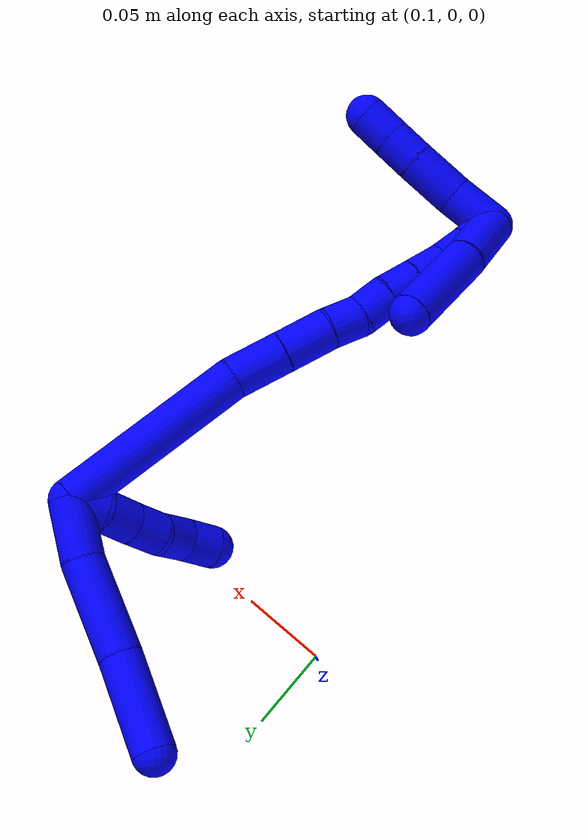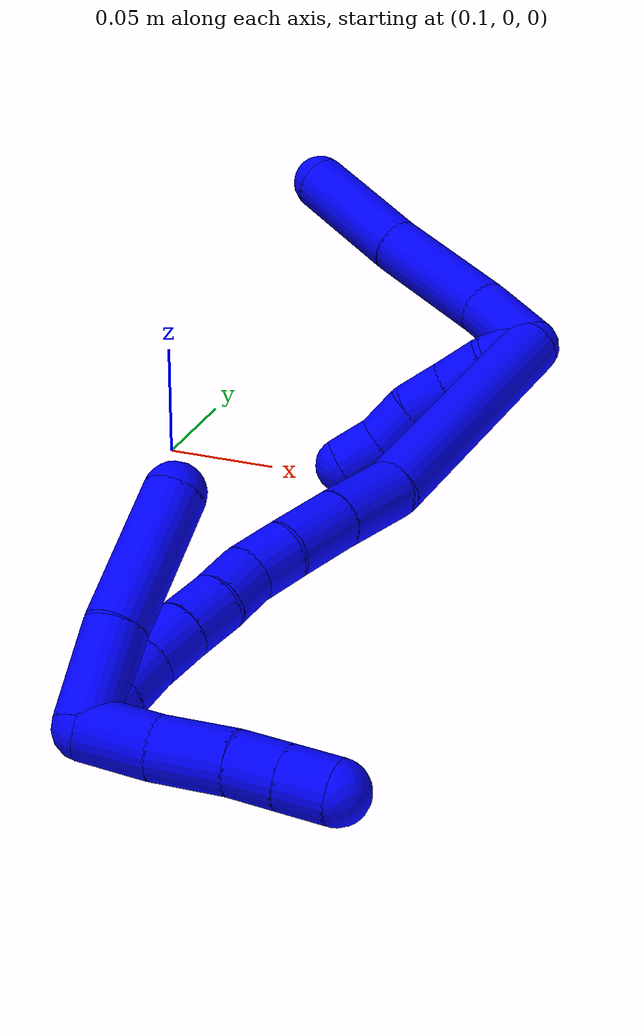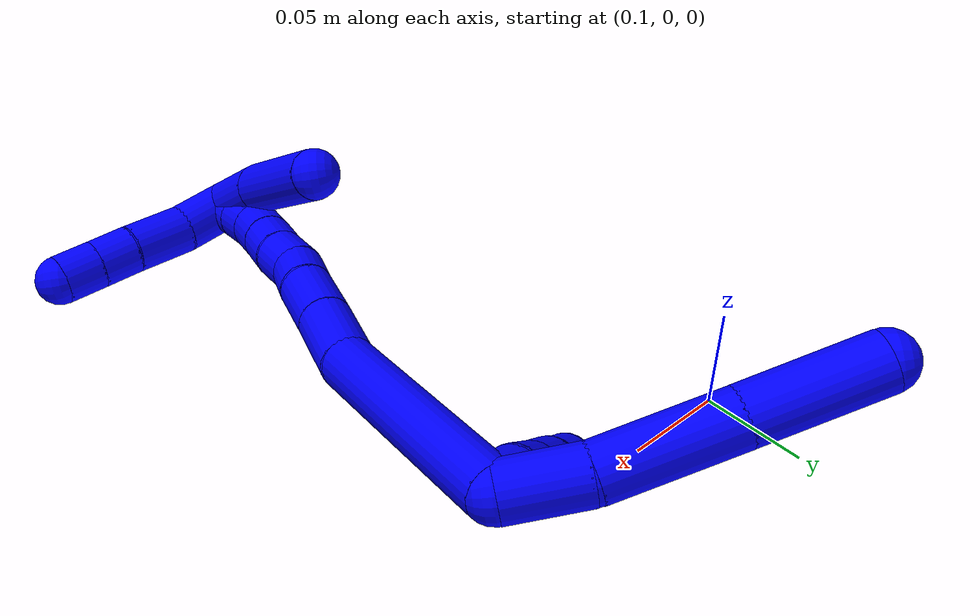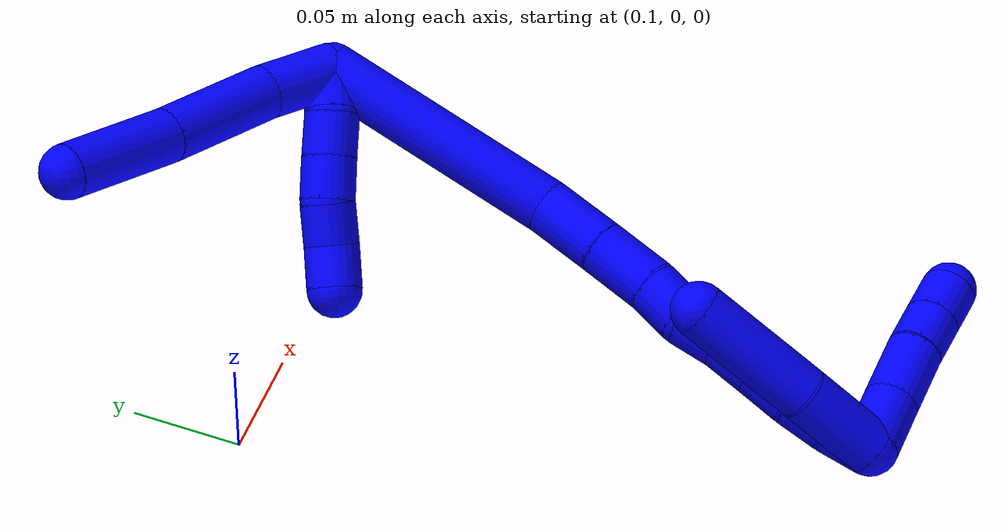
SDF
<sdf version="1.7">
 <world name="default">
  <model name="1">
   <static>0</static>
   <link name="1">
    <collision name="collision-cylinder-e_1_2_8">
     <pose>0.000787 -0.001847 -0.017692 3.03757 0.044239 0.803703</pose>
     <geometry><cylinder><radius>0.0125</radius><length>0.035611</length></cylinder></geometry>
     <surface>
      <friction><ode><mu>1.16</mu><mu2>1.16</mu2><slip1>0</slip1><slip2>0</slip2></ode></friction>
      <contact><ode><kp>1e+06</kp><kd>1</kd><max_vel>0</max_vel><min_depth>0.001</min_depth></ode></contact>
     </surface>
    </collision>
    <visual name="visual-cylinder-e_1_2_8">
     <pose>0.000787 -0.001847 -0.017692 3.03757 0.044239 0.803703</pose>
     <geometry><cylinder><radius>0.0125</radius><length>0.035611</length></cylinder></geometry>
     <material><ambient>0 0 1 1</ambient></material>
    </visual>
    <collision name="collision-cylinder-e_2_8_9">
     <pose>0.001974 -0.011792 -0.063306 2.85933 0.013743 0.096654</pose>
     <geometry><cylinder><radius>0.0125</radius><length>0.05815</length></cylinder></geometry>
     <surface>
      <friction><ode><mu>1.16</mu><mu2>1.16</mu2><slip1>0</slip1><slip2>0</slip2></ode></friction>
      <contact><ode><kp>1e+06</kp><kd>1</kd><max_vel>0</max_vel><min_depth>0.001</min_depth></ode></contact>
     </surface>
    </collision>
    <visual name="visual-cylinder-e_2_8_9">
     <pose>0.001974 -0.011792 -0.063306 2.85933 0.013743 0.096654</pose>
     <geometry><cylinder><radius>0.0125</radius><length>0.05815</length></cylinder></geometry>
     <material><ambient>0 0 1 1</ambient></material>
    </visual>
    <collision name="collision-cylinder-e_3_9_6">
     <pose>0.001217 -0.027112 -0.118379 2.88158 -0.04115 -0.312225</pose>
     <geometry><cylinder><radius>0.0125</radius><length>0.056238</length></cylinder></geometry>
     <surface>
      <friction><ode><mu>1.16</mu><mu2>1.16</mu2><slip1>0</slip1><slip2>0</slip2></ode></friction>
      <contact><ode><kp>1e+06</kp><kd>1</kd><max_vel>0</max_vel><min_depth>0.001</min_depth></ode></contact>
     </surface>
    </collision>
    <visual name="visual-cylinder-e_3_9_6">
     <pose>0.001217 -0.027112 -0.118379 2.88158 -0.04115 -0.312225</pose>
     <geometry><cylinder><radius>0.0125</radius><length>0.056238</length></cylinder></geometry>
     <material><ambient>0 0 1 1</ambient></material>
    </visual>
    <collision name="collision-cylinder-e_1_2_10">
     <pose>0.006693 -0.006762 -0.003079 1.99802 0.733246 1.076</pose>
     <geometry><cylinder><radius>0.0125</radius><length>0.02</length></cylinder></geometry>
     <surface>
      <friction><ode><mu>1.16</mu><mu2>1.16</mu2><slip1>0</slip1><slip2>0</slip2></ode></friction>
      <contact><ode><kp>1e+06</kp><kd>1</kd><max_vel>0</max_vel><min_depth>0.001</min_depth></ode></contact>
     </surface>
    </collision>
    <visual name="visual-cylinder-e_1_2_10">
     <pose>0.006693 -0.006762 -0.003079 1.99802 0.733246 1.076</pose>
     <geometry><cylinder><radius>0.0125</radius><length>0.02</length></cylinder></geometry>
     <material><ambient>0 0 1 1</ambient></material>
    </visual>
    <collision name="collision-cylinder-e_2_10_11">
     <pose>0.021573 -0.018449 -0.009109 2.11083 0.959181 1.48552</pose>
     <geometry><cylinder><radius>0.0125</radius><length>0.02</length></cylinder></geometry>
     <surface>
      <friction><ode><mu>1.16</mu><mu2>1.16</mu2><slip1>0</slip1><slip2>0</slip2></ode></friction>
      <contact><ode><kp>1e+06</kp><kd>1</kd><max_vel>0</max_vel><min_depth>0.001</min_depth></ode></contact>
     </surface>
    </collision>
    <visual name="visual-cylinder-e_2_10_11">
     <pose>0.021573 -0.018449 -0.009109 2.11083 0.959181 1.48552</pose>
     <geometry><cylinder><radius>0.0125</radius><length>0.02</length></cylinder></geometry>
     <material><ambient>0 0 1 1</ambient></material>
    </visual>
    <collision name="collision-cylinder-e_3_11_12">
     <pose>0.037724 -0.028708 -0.014912 2.06147 0.921307 1.3829</pose>
     <geometry><cylinder><radius>0.0125</radius><length>0.02</length></cylinder></geometry>
     <surface>
      <friction><ode><mu>1.16</mu><mu2>1.16</mu2><slip1>0</slip1><slip2>0</slip2></ode></friction>
      <contact><ode><kp>1e+06</kp><kd>1</kd><max_vel>0</max_vel><min_depth>0.001</min_depth></ode></contact>
     </surface>
    </collision>
    <visual name="visual-cylinder-e_3_11_12">
     <pose>0.037724 -0.028708 -0.014912 2.06147 0.921307 1.3829</pose>
     <geometry><cylinder><radius>0.0125</radius><length>0.02</length></cylinder></geometry>
     <material><ambient>0 0 1 1</ambient></material>
    </visual>
    <collision name="collision-cylinder-e_4_12_13">
     <pose>0.054742 -0.038223 -0.018495 1.74454 1.13244 1.29584</pose>
     <geometry><cylinder><radius>0.0125</radius><length>0.02</length></cylinder></geometry>
     <surface>
      <friction><ode><mu>1.16</mu><mu2>1.16</mu2><slip1>0</slip1><slip2>0</slip2></ode></friction>
      <contact><ode><kp>1e+06</kp><kd>1</kd><max_vel>0</max_vel><min_depth>0.001</min_depth></ode></contact>
     </surface>
    </collision>
    <visual name="visual-cylinder-e_4_12_13">
     <pose>0.054742 -0.038223 -0.018495 1.74454 1.13244 1.29584</pose>
     <geometry><cylinder><radius>0.0125</radius><length>0.02</length></cylinder></geometry>
     <material><ambient>0 0 1 1</ambient></material>
    </visual>
    <collision name="collision-cylinder-e_5_13_5">
     <pose>0.071458 -0.048489 -0.0213 1.89887 0.872692 1.15461</pose>
     <geometry><cylinder><radius>0.0125</radius><length>0.02</length></cylinder></geometry>
     <surface>
      <friction><ode><mu>1.16</mu><mu2>1.16</mu2><slip1>0</slip1><slip2>0</slip2></ode></friction>
      <contact><ode><kp>1e+06</kp><kd>1</kd><max_vel>0</max_vel><min_depth>0.001</min_depth></ode></contact>
     </surface>
    </collision>
    <visual name="visual-cylinder-e_5_13_5">
     <pose>0.071458 -0.048489 -0.0213 1.89887 0.872692 1.15461</pose>
     <geometry><cylinder><radius>0.0125</radius><length>0.02</length></cylinder></geometry>
     <material><ambient>0 0 1 1</ambient></material>
    </visual>
    <collision name="collision-cylinder-e_1_2_14">
     <pose>0.018188 -0.045584 0.031115 0.971857 0.318342 0.169168</pose>
     <geometry><cylinder><radius>0.0125</radius><length>0.116222</length></cylinder></geometry>
     <surface>
      <friction><ode><mu>1.16</mu><mu2>1.16</mu2><slip1>0</slip1><slip2>0</slip2></ode></friction>
      <contact><ode><kp>1e+06</kp><kd>1</kd><max_vel>0</max_vel><min_depth>0.001</min_depth></ode></contact>
     </surface>
    </collision>
    <visual name="visual-cylinder-e_1_2_14">
     <pose>0.018188 -0.045584 0.031115 0.971857 0.318342 0.169168</pose>
     <geometry><cylinder><radius>0.0125</radius><length>0.116222</length></cylinder></geometry>
     <material><ambient>0 0 1 1</ambient></material>
    </visual>
    <collision name="collision-cylinder-e_2_14_15">
     <pose>0.040316 -0.106117 0.068219 1.18972 0.239934 0.162767</pose>
     <geometry><cylinder><radius>0.0125</radius><length>0.033158</length></cylinder></geometry>
     <surface>
      <friction><ode><mu>1.16</mu><mu2>1.16</mu2><slip1>0</slip1><slip2>0</slip2></ode></friction>
      <contact><ode><kp>1e+06</kp><kd>1</kd><max_vel>0</max_vel><min_depth>0.001</min_depth></ode></contact>
     </surface>
    </collision>
    <visual name="visual-cylinder-e_2_14_15">
     <pose>0.040316 -0.106117 0.068219 1.18972 0.239934 0.162767</pose>
     <geometry><cylinder><radius>0.0125</radius><length>0.033158</length></cylinder></geometry>
     <material><ambient>0 0 1 1</ambient></material>
    </visual>
    <collision name="collision-cylinder-e_3_15_16">
     <pose>0.04822 -0.134245 0.079762 1.17199 0.270374 0.18008</pose>
     <geometry><cylinder><radius>0.0125</radius><length>0.029681</length></cylinder></geometry>
     <surface>
      <friction><ode><mu>1.16</mu><mu2>1.16</mu2><slip1>0</slip1><slip2>0</slip2></ode></friction>
      <contact><ode><kp>1e+06</kp><kd>1</kd><max_vel>0</max_vel><min_depth>0.001</min_depth></ode></contact>
     </surface>
    </collision>
    <visual name="visual-cylinder-e_3_15_16">
     <pose>0.04822 -0.134245 0.079762 1.17199 0.270374 0.18008</pose>
     <geometry><cylinder><radius>0.0125</radius><length>0.029681</length></cylinder></geometry>
     <material><ambient>0 0 1 1</ambient></material>
    </visual>
    <collision name="collision-cylinder-e_4_16_17">
     <pose>0.055984 -0.156332 0.088416 1.23591 0.383029 0.273919</pose>
     <geometry><cylinder><radius>0.0125</radius><length>0.020338</length></cylinder></geometry>
     <surface>
      <friction><ode><mu>1.16</mu><mu2>1.16</mu2><slip1>0</slip1><slip2>0</slip2></ode></friction>
      <contact><ode><kp>1e+06</kp><kd>1</kd><max_vel>0</max_vel><min_depth>0.001</min_depth></ode></contact>
     </surface>
    </collision>
    <visual name="visual-cylinder-e_4_16_17">
     <pose>0.055984 -0.156332 0.088416 1.23591 0.383029 0.273919</pose>
     <geometry><cylinder><radius>0.0125</radius><length>0.020338</length></cylinder></geometry>
     <material><ambient>0 0 1 1</ambient></material>
    </visual>
    <collision name="collision-cylinder-e_5_17_18">
     <pose>0.062637 -0.17329 0.096867 0.984127 0.286913 0.154553</pose>
     <geometry><cylinder><radius>0.0125</radius><length>0.020156</length></cylinder></geometry>
     <surface>
      <friction><ode><mu>1.16</mu><mu2>1.16</mu2><slip1>0</slip1><slip2>0</slip2></ode></friction>
      <contact><ode><kp>1e+06</kp><kd>1</kd><max_vel>0</max_vel><min_depth>0.001</min_depth></ode></contact>
     </surface>
    </collision>
    <visual name="visual-cylinder-e_5_17_18">
     <pose>0.062637 -0.17329 0.096867 0.984127 0.286913 0.154553</pose>
     <geometry><cylinder><radius>0.0125</radius><length>0.020156</length></cylinder></geometry>
     <material><ambient>0 0 1 1</ambient></material>
    </visual>
    <collision name="collision-cylinder-e_6_18_19">
     <pose>0.068979 -0.189744 0.106458 1.10348 0.355122 0.220013</pose>
     <geometry><cylinder><radius>0.0125</radius><length>0.020079</length></cylinder></geometry>
     <surface>
      <friction><ode><mu>1.16</mu><mu2>1.16</mu2><slip1>0</slip1><slip2>0</slip2></ode></friction>
      <contact><ode><kp>1e+06</kp><kd>1</kd><max_vel>0</max_vel><min_depth>0.001</min_depth></ode></contact>
     </surface>
    </collision>
    <visual name="visual-cylinder-e_6_18_19">
     <pose>0.068979 -0.189744 0.106458 1.10348 0.355122 0.220013</pose>
     <geometry><cylinder><radius>0.0125</radius><length>0.020079</length></cylinder></geometry>
     <material><ambient>0 0 1 1</ambient></material>
    </visual>
    <collision name="collision-cylinder-e_7_19_20">
     <pose>0.07634 -0.206375 0.115133 1.07647 0.392567 0.236326</pose>
     <geometry><cylinder><radius>0.0125</radius><length>0.020231</length></cylinder></geometry>
     <surface>
      <friction><ode><mu>1.16</mu><mu2>1.16</mu2><slip1>0</slip1><slip2>0</slip2></ode></friction>
      <contact><ode><kp>1e+06</kp><kd>1</kd><max_vel>0</max_vel><min_depth>0.001</min_depth></ode></contact>
     </surface>
    </collision>
    <visual name="visual-cylinder-e_7_19_20">
     <pose>0.07634 -0.206375 0.115133 1.07647 0.392567 0.236326</pose>
     <geometry><cylinder><radius>0.0125</radius><length>0.020231</length></cylinder></geometry>
     <material><ambient>0 0 1 1</ambient></material>
    </visual>
    <collision name="collision-cylinder-e_8_20_21">
     <pose>0.083989 -0.222203 0.124873 0.961316 0.387122 0.203716</pose>
     <geometry><cylinder><radius>0.0125</radius><length>0.020022</length></cylinder></geometry>
     <surface>
      <friction><ode><mu>1.16</mu><mu2>1.16</mu2><slip1>0</slip1><slip2>0</slip2></ode></friction>
      <contact><ode><kp>1e+06</kp><kd>1</kd><max_vel>0</max_vel><min_depth>0.001</min_depth></ode></contact>
     </surface>
    </collision>
    <visual name="visual-cylinder-e_8_20_21">
     <pose>0.083989 -0.222203 0.124873 0.961316 0.387122 0.203716</pose>
     <geometry><cylinder><radius>0.0125</radius><length>0.020022</length></cylinder></geometry>
     <material><ambient>0 0 1 1</ambient></material>
    </visual>
    <collision name="collision-cylinder-e_9_21_1">
     <pose>0.090682 -0.237477 0.135992 0.922521 0.293915 0.146877</pose>
     <geometry><cylinder><radius>0.0125</radius><length>0.020114</length></cylinder></geometry>
     <surface>
      <friction><ode><mu>1.16</mu><mu2>1.16</mu2><slip1>0</slip1><slip2>0</slip2></ode></friction>
      <contact><ode><kp>1e+06</kp><kd>1</kd><max_vel>0</max_vel><min_depth>0.001</min_depth></ode></contact>
     </surface>
    </collision>
    <visual name="visual-cylinder-e_9_21_1">
     <pose>0.090682 -0.237477 0.135992 0.922521 0.293915 0.146877</pose>
     <geometry><cylinder><radius>0.0125</radius><length>0.020114</length></cylinder></geometry>
     <material><ambient>0 0 1 1</ambient></material>
    </visual>
    <collision name="collision-cylinder-e_1_1_22">
     <pose>0.090296 -0.23589 0.152314 -0.72222 -0.231333 0.087703</pose>
     <geometry><cylinder><radius>0.0125</radius><length>0.028782</length></cylinder></geometry>
     <surface>
      <friction><ode><mu>1.16</mu><mu2>1.16</mu2><slip1>0</slip1><slip2>0</slip2></ode></friction>
      <contact><ode><kp>1e+06</kp><kd>1</kd><max_vel>0</max_vel><min_depth>0.001</min_depth></ode></contact>
     </surface>
    </collision>
    <visual name="visual-cylinder-e_1_1_22">
     <pose>0.090296 -0.23589 0.152314 -0.72222 -0.231333 0.087703</pose>
     <geometry><cylinder><radius>0.0125</radius><length>0.028782</length></cylinder></geometry>
     <material><ambient>0 0 1 1</ambient></material>
    </visual>
    <collision name="collision-cylinder-e_2_22_23">
     <pose>0.081675 -0.217541 0.174156 -0.676059 -0.351162 0.124564</pose>
     <geometry><cylinder><radius>0.0125</radius><length>0.03094</length></cylinder></geometry>
     <surface>
      <friction><ode><mu>1.16</mu><mu2>1.16</mu2><slip1>0</slip1><slip2>0</slip2></ode></friction>
      <contact><ode><kp>1e+06</kp><kd>1</kd><max_vel>0</max_vel><min_depth>0.001</min_depth></ode></contact>
     </surface>
    </collision>
    <visual name="visual-cylinder-e_2_22_23">
     <pose>0.081675 -0.217541 0.174156 -0.676059 -0.351162 0.124564</pose>
     <geometry><cylinder><radius>0.0125</radius><length>0.03094</length></cylinder></geometry>
     <material><ambient>0 0 1 1</ambient></material>
    </visual>
    <collision name="collision-cylinder-e_3_23_24">
     <pose>0.073596 -0.202672 0.193246 -0.640168 -0.277654 0.092567</pose>
     <geometry><cylinder><radius>0.0125</radius><length>0.020121</length></cylinder></geometry>
     <surface>
      <friction><ode><mu>1.16</mu><mu2>1.16</mu2><slip1>0</slip1><slip2>0</slip2></ode></friction>
      <contact><ode><kp>1e+06</kp><kd>1</kd><max_vel>0</max_vel><min_depth>0.001</min_depth></ode></contact>
     </surface>
    </collision>
    <visual name="visual-cylinder-e_3_23_24">
     <pose>0.073596 -0.202672 0.193246 -0.640168 -0.277654 0.092567</pose>
     <geometry><cylinder><radius>0.0125</radius><length>0.020121</length></cylinder></geometry>
     <material><ambient>0 0 1 1</ambient></material>
    </visual>
    <collision name="collision-cylinder-e_4_24_4">
     <pose>0.068047 -0.191143 0.208798 -0.635709 -0.280607 0.092866</pose>
     <geometry><cylinder><radius>0.0125</radius><length>0.020157</length></cylinder></geometry>
     <surface>
      <friction><ode><mu>1.16</mu><mu2>1.16</mu2><slip1>0</slip1><slip2>0</slip2></ode></friction>
      <contact><ode><kp>1e+06</kp><kd>1</kd><max_vel>0</max_vel><min_depth>0.001</min_depth></ode></contact>
     </surface>
    </collision>
    <visual name="visual-cylinder-e_4_24_4">
     <pose>0.068047 -0.191143 0.208798 -0.635709 -0.280607 0.092866</pose>
     <geometry><cylinder><radius>0.0125</radius><length>0.020157</length></cylinder></geometry>
     <material><ambient>0 0 1 1</ambient></material>
    </visual>
    <collision name="collision-cylinder-e_1_1_25">
     <pose>0.080707 -0.237307 0.128455 -2.61042 -0.694219 1.85213</pose>
     <geometry><cylinder><radius>0.0125</radius><length>0.040289</length></cylinder></geometry>
     <surface>
      <friction><ode><mu>1.16</mu><mu2>1.16</mu2><slip1>0</slip1><slip2>0</slip2></ode></friction>
      <contact><ode><kp>1e+06</kp><kd>1</kd><max_vel>0</max_vel><min_depth>0.001</min_depth></ode></contact>
     </surface>
    </collision>
    <visual name="visual-cylinder-e_1_1_25">
     <pose>0.080707 -0.237307 0.128455 -2.61042 -0.694219 1.85213</pose>
     <geometry><cylinder><radius>0.0125</radius><length>0.040289</length></cylinder></geometry>
     <material><ambient>0 0 1 1</ambient></material>
    </visual>
    <collision name="collision-cylinder-e_2_25_3">
     <pose>0.050189 -0.214577 0.096162 -2.47554 -0.631689 1.51395</pose>
     <geometry><cylinder><radius>0.0125</radius><length>0.059711</length></cylinder></geometry>
     <surface>
      <friction><ode><mu>1.16</mu><mu2>1.16</mu2><slip1>0</slip1><slip2>0</slip2></ode></friction>
      <contact><ode><kp>1e+06</kp><kd>1</kd><max_vel>0</max_vel><min_depth>0.001</min_depth></ode></contact>
     </surface>
    </collision>
    <visual name="visual-cylinder-e_2_25_3">
     <pose>0.050189 -0.214577 0.096162 -2.47554 -0.631689 1.51395</pose>
     <geometry><cylinder><radius>0.0125</radius><length>0.059711</length></cylinder></geometry>
     <material><ambient>0 0 1 1</ambient></material>
    </visual>
    <collision name="collision-sphere-3">
     <pose>0.032559 -0.19969 0.077217 0 -0 0</pose>
     <geometry><sphere><radius>0.0125</radius></sphere></geometry>
     <surface>
      <friction><ode><mu>1.16</mu><mu2>1.16</mu2><slip1>0</slip1><slip2>0</slip2></ode></friction>
      <contact><ode><kp>1e+06</kp><kd>1</kd><max_vel>0</max_vel><min_depth>0.001</min_depth></ode></contact>
     </surface>
    </collision>
    <visual name="visual-sphere-3">
     <pose>0.032559 -0.19969 0.077217 0 -0 0</pose>
     <geometry><sphere><radius>0.0125</radius></sphere></geometry>
     <material><ambient>0 0 1 1</ambient></material>
    </visual>
    <collision name="collision-sphere-25">
     <pose>0.067819 -0.229465 0.115106 0 -0 0</pose>
     <geometry><sphere><radius>0.0125</radius></sphere></geometry>
     <surface>
      <friction><ode><mu>1.16</mu><mu2>1.16</mu2><slip1>0</slip1><slip2>0</slip2></ode></friction>
      <contact><ode><kp>1e+06</kp><kd>1</kd><max_vel>0</max_vel><min_depth>0.001</min_depth></ode></contact>
     </surface>
    </collision>
    <visual name="visual-sphere-25">
     <pose>0.067819 -0.229465 0.115106 0 -0 0</pose>
     <geometry><sphere><radius>0.0125</radius></sphere></geometry>
     <material><ambient>0 0 1 1</ambient></material>
    </visual>
    <collision name="collision-sphere-4">
     <pose>0.065256 -0.185393 0.216591 0 -0 0</pose>
     <geometry><sphere><radius>0.0125</radius></sphere></geometry>
     <surface>
      <friction><ode><mu>1.16</mu><mu2>1.16</mu2><slip1>0</slip1><slip2>0</slip2></ode></friction>
      <contact><ode><kp>1e+06</kp><kd>1</kd><max_vel>0</max_vel><min_depth>0.001</min_depth></ode></contact>
     </surface>
    </collision>
    <visual name="visual-sphere-4">
     <pose>0.065256 -0.185393 0.216591 0 -0 0</pose>
     <geometry><sphere><radius>0.0125</radius></sphere></geometry>
     <material><ambient>0 0 1 1</ambient></material>
    </visual>
    <collision name="collision-sphere-24">
     <pose>0.070838 -0.196893 0.201005 0 -0 0</pose>
     <geometry><sphere><radius>0.0125</radius></sphere></geometry>
     <surface>
      <friction><ode><mu>1.16</mu><mu2>1.16</mu2><slip1>0</slip1><slip2>0</slip2></ode></friction>
      <contact><ode><kp>1e+06</kp><kd>1</kd><max_vel>0</max_vel><min_depth>0.001</min_depth></ode></contact>
     </surface>
    </collision>
    <visual name="visual-sphere-24">
     <pose>0.070838 -0.196893 0.201005 0 -0 0</pose>
     <geometry><sphere><radius>0.0125</radius></sphere></geometry>
     <material><ambient>0 0 1 1</ambient></material>
    </visual>
    <collision name="collision-sphere-23">
     <pose>0.076353 -0.208452 0.185487 0 -0 0</pose>
     <geometry><sphere><radius>0.0125</radius></sphere></geometry>
     <surface>
      <friction><ode><mu>1.16</mu><mu2>1.16</mu2><slip1>0</slip1><slip2>0</slip2></ode></friction>
      <contact><ode><kp>1e+06</kp><kd>1</kd><max_vel>0</max_vel><min_depth>0.001</min_depth></ode></contact>
     </surface>
    </collision>
    <visual name="visual-sphere-23">
     <pose>0.076353 -0.208452 0.185487 0 -0 0</pose>
     <geometry><sphere><radius>0.0125</radius></sphere></geometry>
     <material><ambient>0 0 1 1</ambient></material>
    </visual>
    <collision name="collision-sphere-22">
     <pose>0.086997 -0.22663 0.162825 0 -0 0</pose>
     <geometry><sphere><radius>0.0125</radius></sphere></geometry>
     <surface>
      <friction><ode><mu>1.16</mu><mu2>1.16</mu2><slip1>0</slip1><slip2>0</slip2></ode></friction>
      <contact><ode><kp>1e+06</kp><kd>1</kd><max_vel>0</max_vel><min_depth>0.001</min_depth></ode></contact>
     </surface>
    </collision>
    <visual name="visual-sphere-22">
     <pose>0.086997 -0.22663 0.162825 0 -0 0</pose>
     <geometry><sphere><radius>0.0125</radius></sphere></geometry>
     <material><ambient>0 0 1 1</ambient></material>
    </visual>
    <collision name="collision-sphere-1">
     <pose>0.093595 -0.245149 0.141804 0 -0 0</pose>
     <geometry><sphere><radius>0.0125</radius></sphere></geometry>
     <surface>
      <friction><ode><mu>1.16</mu><mu2>1.16</mu2><slip1>0</slip1><slip2>0</slip2></ode></friction>
      <contact><ode><kp>1e+06</kp><kd>1</kd><max_vel>0</max_vel><min_depth>0.001</min_depth></ode></contact>
     </surface>
    </collision>
    <visual name="visual-sphere-1">
     <pose>0.093595 -0.245149 0.141804 0 -0 0</pose>
     <geometry><sphere><radius>0.0125</radius></sphere></geometry>
     <material><ambient>0 0 1 1</ambient></material>
    </visual>
    <collision name="collision-sphere-21">
     <pose>0.087769 -0.229804 0.13018 0 -0 0</pose>
     <geometry><sphere><radius>0.0125</radius></sphere></geometry>
     <surface>
      <friction><ode><mu>1.16</mu><mu2>1.16</mu2><slip1>0</slip1><slip2>0</slip2></ode></friction>
      <contact><ode><kp>1e+06</kp><kd>1</kd><max_vel>0</max_vel><min_depth>0.001</min_depth></ode></contact>
     </surface>
    </collision>
    <visual name="visual-sphere-21">
     <pose>0.087769 -0.229804 0.13018 0 -0 0</pose>
     <geometry><sphere><radius>0.0125</radius></sphere></geometry>
     <material><ambient>0 0 1 1</ambient></material>
    </visual>
    <collision name="collision-sphere-11">
     <pose>0.02976 -0.023374 -0.012062 0 -0 0</pose>
     <geometry><sphere><radius>0.0125</radius></sphere></geometry>
     <surface>
      <friction><ode><mu>1.16</mu><mu2>1.16</mu2><slip1>0</slip1><slip2>0</slip2></ode></friction>
      <contact><ode><kp>1e+06</kp><kd>1</kd><max_vel>0</max_vel><min_depth>0.001</min_depth></ode></contact>
     </surface>
    </collision>
    <visual name="visual-sphere-11">
     <pose>0.02976 -0.023374 -0.012062 0 -0 0</pose>
     <geometry><sphere><radius>0.0125</radius></sphere></geometry>
     <material><ambient>0 0 1 1</ambient></material>
    </visual>
    <collision name="collision-sphere-10">
     <pose>0.013386 -0.013524 -0.006157 0 -0 0</pose>
     <geometry><sphere><radius>0.0125</radius></sphere></geometry>
     <surface>
      <friction><ode><mu>1.16</mu><mu2>1.16</mu2><slip1>0</slip1><slip2>0</slip2></ode></friction>
      <contact><ode><kp>1e+06</kp><kd>1</kd><max_vel>0</max_vel><min_depth>0.001</min_depth></ode></contact>
     </surface>
    </collision>
    <visual name="visual-sphere-10">
     <pose>0.013386 -0.013524 -0.006157 0 -0 0</pose>
     <geometry><sphere><radius>0.0125</radius></sphere></geometry>
     <material><ambient>0 0 1 1</ambient></material>
    </visual>
    <collision name="collision-sphere-6">
     <pose>6e-05 -0.034335 -0.14553 0 -0 0</pose>
     <geometry><sphere><radius>0.0125</radius></sphere></geometry>
     <surface>
      <friction><ode><mu>1.16</mu><mu2>1.16</mu2><slip1>0</slip1><slip2>0</slip2></ode></friction>
      <contact><ode><kp>1e+06</kp><kd>1</kd><max_vel>0</max_vel><min_depth>0.001</min_depth></ode></contact>
     </surface>
    </collision>
    <visual name="visual-sphere-6">
     <pose>6e-05 -0.034335 -0.14553 0 -0 0</pose>
     <geometry><sphere><radius>0.0125</radius></sphere></geometry>
     <material><ambient>0 0 1 1</ambient></material>
    </visual>
    <collision name="collision-sphere-9">
     <pose>0.002374 -0.019889 -0.091228 0 -0 0</pose>
     <geometry><sphere><radius>0.0125</radius></sphere></geometry>
     <surface>
      <friction><ode><mu>1.16</mu><mu2>1.16</mu2><slip1>0</slip1><slip2>0</slip2></ode></friction>
      <contact><ode><kp>1e+06</kp><kd>1</kd><max_vel>0</max_vel><min_depth>0.001</min_depth></ode></contact>
     </surface>
    </collision>
    <visual name="visual-sphere-9">
     <pose>0.002374 -0.019889 -0.091228 0 -0 0</pose>
     <geometry><sphere><radius>0.0125</radius></sphere></geometry>
     <material><ambient>0 0 1 1</ambient></material>
    </visual>
    <collision name="collision-sphere-2">
     <geometry><sphere><radius>0.0125</radius></sphere></geometry>
     <surface>
      <friction><ode><mu>1.16</mu><mu2>1.16</mu2><slip1>0</slip1><slip2>0</slip2></ode></friction>
      <contact><ode><kp>1e+06</kp><kd>1</kd><max_vel>0</max_vel><min_depth>0.001</min_depth></ode></contact>
     </surface>
    </collision>
    <visual name="visual-sphere-2">
     <geometry><sphere><radius>0.0125</radius></sphere></geometry>
     <material><ambient>0 0 1 1</ambient></material>
    </visual>
    <collision name="collision-sphere-19">
     <pose>0.07247 -0.198148 0.110699 0 -0 0</pose>
     <geometry><sphere><radius>0.0125</radius></sphere></geometry>
     <surface>
      <friction><ode><mu>1.16</mu><mu2>1.16</mu2><slip1>0</slip1><slip2>0</slip2></ode></friction>
      <contact><ode><kp>1e+06</kp><kd>1</kd><max_vel>0</max_vel><min_depth>0.001</min_depth></ode></contact>
     </surface>
    </collision>
    <visual name="visual-sphere-19">
     <pose>0.07247 -0.198148 0.110699 0 -0 0</pose>
     <geometry><sphere><radius>0.0125</radius></sphere></geometry>
     <material><ambient>0 0 1 1</ambient></material>
    </visual>
    <collision name="collision-sphere-8">
     <pose>0.001575 -0.003694 -0.035384 0 -0 0</pose>
     <geometry><sphere><radius>0.0125</radius></sphere></geometry>
     <surface>
      <friction><ode><mu>1.16</mu><mu2>1.16</mu2><slip1>0</slip1><slip2>0</slip2></ode></friction>
      <contact><ode><kp>1e+06</kp><kd>1</kd><max_vel>0</max_vel><min_depth>0.001</min_depth></ode></contact>
     </surface>
    </collision>
    <visual name="visual-sphere-8">
     <pose>0.001575 -0.003694 -0.035384 0 -0 0</pose>
     <geometry><sphere><radius>0.0125</radius></sphere></geometry>
     <material><ambient>0 0 1 1</ambient></material>
    </visual>
    <collision name="collision-sphere-12">
     <pose>0.045688 -0.034043 -0.017761 0 -0 0</pose>
     <geometry><sphere><radius>0.0125</radius></sphere></geometry>
     <surface>
      <friction><ode><mu>1.16</mu><mu2>1.16</mu2><slip1>0</slip1><slip2>0</slip2></ode></friction>
      <contact><ode><kp>1e+06</kp><kd>1</kd><max_vel>0</max_vel><min_depth>0.001</min_depth></ode></contact>
     </surface>
    </collision>
    <visual name="visual-sphere-12">
     <pose>0.045688 -0.034043 -0.017761 0 -0 0</pose>
     <geometry><sphere><radius>0.0125</radius></sphere></geometry>
     <material><ambient>0 0 1 1</ambient></material>
    </visual>
    <collision name="collision-sphere-13">
     <pose>0.063797 -0.042404 -0.019229 0 -0 0</pose>
     <geometry><sphere><radius>0.0125</radius></sphere></geometry>
     <surface>
      <friction><ode><mu>1.16</mu><mu2>1.16</mu2><slip1>0</slip1><slip2>0</slip2></ode></friction>
      <contact><ode><kp>1e+06</kp><kd>1</kd><max_vel>0</max_vel><min_depth>0.001</min_depth></ode></contact>
     </surface>
    </collision>
    <visual name="visual-sphere-13">
     <pose>0.063797 -0.042404 -0.019229 0 -0 0</pose>
     <geometry><sphere><radius>0.0125</radius></sphere></geometry>
     <material><ambient>0 0 1 1</ambient></material>
    </visual>
    <collision name="collision-sphere-5">
     <pose>0.079118 -0.054574 -0.023371 0 -0 0</pose>
     <geometry><sphere><radius>0.0125</radius></sphere></geometry>
     <surface>
      <friction><ode><mu>1.16</mu><mu2>1.16</mu2><slip1>0</slip1><slip2>0</slip2></ode></friction>
      <contact><ode><kp>1e+06</kp><kd>1</kd><max_vel>0</max_vel><min_depth>0.001</min_depth></ode></contact>
     </surface>
    </collision>
    <visual name="visual-sphere-5">
     <pose>0.079118 -0.054574 -0.023371 0 -0 0</pose>
     <geometry><sphere><radius>0.0125</radius></sphere></geometry>
     <material><ambient>0 0 1 1</ambient></material>
    </visual>
    <collision name="collision-sphere-14">
     <pose>0.036377 -0.091169 0.06223 0 -0 0</pose>
     <geometry><sphere><radius>0.0125</radius></sphere></geometry>
     <surface>
      <friction><ode><mu>1.16</mu><mu2>1.16</mu2><slip1>0</slip1><slip2>0</slip2></ode></friction>
      <contact><ode><kp>1e+06</kp><kd>1</kd><max_vel>0</max_vel><min_depth>0.001</min_depth></ode></contact>
     </surface>
    </collision>
    <visual name="visual-sphere-14">
     <pose>0.036377 -0.091169 0.06223 0 -0 0</pose>
     <geometry><sphere><radius>0.0125</radius></sphere></geometry>
     <material><ambient>0 0 1 1</ambient></material>
    </visual>
    <collision name="collision-sphere-15">
     <pose>0.044256 -0.121066 0.074209 0 -0 0</pose>
     <geometry><sphere><radius>0.0125</radius></sphere></geometry>
     <surface>
      <friction><ode><mu>1.16</mu><mu2>1.16</mu2><slip1>0</slip1><slip2>0</slip2></ode></friction>
      <contact><ode><kp>1e+06</kp><kd>1</kd><max_vel>0</max_vel><min_depth>0.001</min_depth></ode></contact>
     </surface>
    </collision>
    <visual name="visual-sphere-15">
     <pose>0.044256 -0.121066 0.074209 0 -0 0</pose>
     <geometry><sphere><radius>0.0125</radius></sphere></geometry>
     <material><ambient>0 0 1 1</ambient></material>
    </visual>
    <collision name="collision-sphere-16">
     <pose>0.052184 -0.147424 0.085316 0 -0 0</pose>
     <geometry><sphere><radius>0.0125</radius></sphere></geometry>
     <surface>
      <friction><ode><mu>1.16</mu><mu2>1.16</mu2><slip1>0</slip1><slip2>0</slip2></ode></friction>
      <contact><ode><kp>1e+06</kp><kd>1</kd><max_vel>0</max_vel><min_depth>0.001</min_depth></ode></contact>
     </surface>
    </collision>
    <visual name="visual-sphere-16">
     <pose>0.052184 -0.147424 0.085316 0 -0 0</pose>
     <geometry><sphere><radius>0.0125</radius></sphere></geometry>
     <material><ambient>0 0 1 1</ambient></material>
    </visual>
    <collision name="collision-sphere-17">
     <pose>0.059785 -0.165241 0.091516 0 -0 0</pose>
     <geometry><sphere><radius>0.0125</radius></sphere></geometry>
     <surface>
      <friction><ode><mu>1.16</mu><mu2>1.16</mu2><slip1>0</slip1><slip2>0</slip2></ode></friction>
      <contact><ode><kp>1e+06</kp><kd>1</kd><max_vel>0</max_vel><min_depth>0.001</min_depth></ode></contact>
     </surface>
    </collision>
    <visual name="visual-sphere-17">
     <pose>0.059785 -0.165241 0.091516 0 -0 0</pose>
     <geometry><sphere><radius>0.0125</radius></sphere></geometry>
     <material><ambient>0 0 1 1</ambient></material>
    </visual>
    <collision name="collision-sphere-18">
     <pose>0.065489 -0.18134 0.102218 0 -0 0</pose>
     <geometry><sphere><radius>0.0125</radius></sphere></geometry>
     <surface>
      <friction><ode><mu>1.16</mu><mu2>1.16</mu2><slip1>0</slip1><slip2>0</slip2></ode></friction>
      <contact><ode><kp>1e+06</kp><kd>1</kd><max_vel>0</max_vel><min_depth>0.001</min_depth></ode></contact>
     </surface>
    </collision>
    <visual name="visual-sphere-18">
     <pose>0.065489 -0.18134 0.102218 0 -0 0</pose>
     <geometry><sphere><radius>0.0125</radius></sphere></geometry>
     <material><ambient>0 0 1 1</ambient></material>
    </visual>
    <collision name="collision-sphere-20">
     <pose>0.08021 -0.214602 0.119567 0 -0 0</pose>
     <geometry><sphere><radius>0.0125</radius></sphere></geometry>
     <surface>
      <friction><ode><mu>1.16</mu><mu2>1.16</mu2><slip1>0</slip1><slip2>0</slip2></ode></friction>
      <contact><ode><kp>1e+06</kp><kd>1</kd><max_vel>0</max_vel><min_depth>0.001</min_depth></ode></contact>
     </surface>
    </collision>
    <visual name="visual-sphere-20">
     <pose>0.08021 -0.214602 0.119567 0 -0 0</pose>
     <geometry><sphere><radius>0.0125</radius></sphere></geometry>
     <material><ambient>0 0 1 1</ambient></material>
    </visual>
    <inertial>
     <pose>0.042667 -0.114129 0.050905 0 -0 0</pose>
     <mass>0.75</mass>
     <inertia>
      <ixx>0.000248</ixx>
      <ixy>0</ixy>
      <ixz>0</ixz>
      <iyy>0.000108</iyy>
      <iyz>0</iyz>
      <izz>8.1e-05</izz>
     </inertia>
    </inertial>
   </link>
   <pose>0.263548 0.020824 0.067977 -2.20908 1.2451 -2.92823</pose>
  </model>
 </world>
</sdf>
